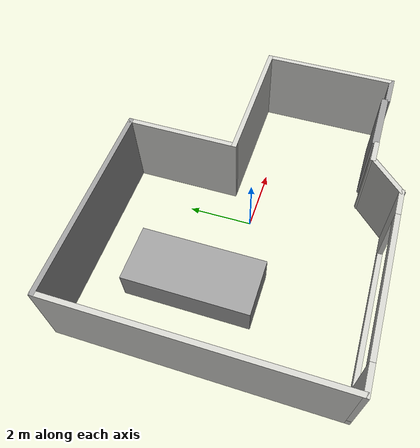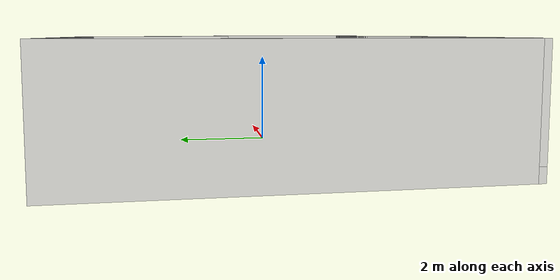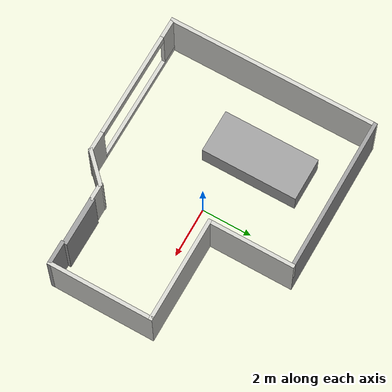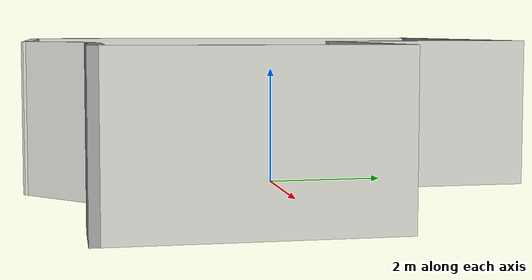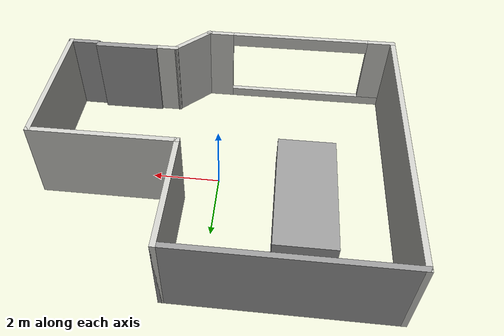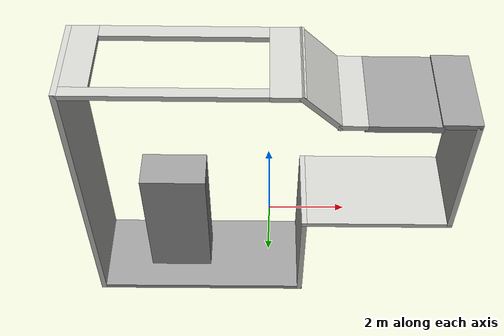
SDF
<?xml version='1.0'?>
<sdf version='1.7'>
  <model name='atproom'>
    <link name='Door_0'>
      <pose>3.26877 -3.17053 0 0 -0 0</pose>
      <self_collide>0</self_collide>
      <enable_wind>0</enable_wind>
      <kinematic>0</kinematic>
      <visual name='Door_0_Visual'>
        <pose>0 0 1.25 0 -0 0</pose>
        <geometry>
          <box>
            <size>1.94 0.2 2.5</size>
          </box>
        </geometry>
        <material>
          <script>
            <uri>file://media/materials/scripts/gazebo.material</uri>
            <name>Gazebo/Grey</name>
          </script>
          <shader type='pixel'/>
        </material>
        <transparency>0</transparency>
        <cast_shadows>1</cast_shadows>
      </visual>
      <collision name='Door_0_Collision'>
        <laser_retro>0</laser_retro>
        <max_contacts>10</max_contacts>
        <pose>0 0 1.25 0 -0 0</pose>
        <geometry>
          <box>
            <size>1.94 0.2 2.5</size>
          </box>
        </geometry>
        <surface>
          <friction>
            <ode>
              <mu>1</mu>
              <mu2>1</mu2>
              <fdir1>0 0 0</fdir1>
              <slip1>0</slip1>
              <slip2>0</slip2>
            </ode>
            <torsional>
              <coefficient>1</coefficient>
              <patch_radius>0</patch_radius>
              <surface_radius>0</surface_radius>
              <use_patch_radius>1</use_patch_radius>
              <ode>
                <slip>0</slip>
              </ode>
            </torsional>
          </friction>
          <bounce>
            <restitution_coefficient>0</restitution_coefficient>
            <threshold>1e+06</threshold>
          </bounce>
          <contact>
            <collide_without_contact>0</collide_without_contact>
            <collide_without_contact_bitmask>1</collide_without_contact_bitmask>
            <collide_bitmask>1</collide_bitmask>
            <ode>
              <soft_cfm>0</soft_cfm>
              <soft_erp>0.2</soft_erp>
              <kp>1e+13</kp>
              <kd>1</kd>
              <max_vel>0.01</max_vel>
              <min_depth>0</min_depth>
            </ode>
            <bullet>
              <split_impulse>1</split_impulse>
              <split_impulse_penetration_threshold>-0.01</split_impulse_penetration_threshold>
              <soft_cfm>0</soft_cfm>
              <soft_erp>0.2</soft_erp>
              <kp>1e+13</kp>
              <kd>1</kd>
            </bullet>
          </contact>
        </surface>
      </collision>
    </link>
    <link name='Wall_0'>
      <pose>2.00459 -3.20487 0 0 -0 3.14159</pose>
      <self_collide>0</self_collide>
      <enable_wind>0</enable_wind>
      <kinematic>0</kinematic>
      <visual name='Wall_0_Visual'>
        <pose>0 0 1.25 0 -0 0</pose>
        <geometry>
          <box>
            <size>0.75 0.15 2.5</size>
          </box>
        </geometry>
        <material>
          <script>
            <uri>file://media/materials/scripts/gazebo.material</uri>
            <name>Gazebo/CeilingTiled</name>
          </script>
          <ambient>1 1 1 1</ambient>
          <shader type='pixel'/>
        </material>
        <meta>
          <layer>0</layer>
        </meta>
        <transparency>0</transparency>
        <cast_shadows>1</cast_shadows>
      </visual>
      <collision name='Wall_0_Collision'>
        <laser_retro>0</laser_retro>
        <max_contacts>10</max_contacts>
        <pose>0 0 1.25 0 -0 0</pose>
        <geometry>
          <box>
            <size>0.75 0.15 2.5</size>
          </box>
        </geometry>
        <surface>
          <friction>
            <ode>
              <mu>1</mu>
              <mu2>1</mu2>
              <fdir1>0 0 0</fdir1>
              <slip1>0</slip1>
              <slip2>0</slip2>
            </ode>
            <torsional>
              <coefficient>1</coefficient>
              <patch_radius>0</patch_radius>
              <surface_radius>0</surface_radius>
              <use_patch_radius>1</use_patch_radius>
              <ode>
                <slip>0</slip>
              </ode>
            </torsional>
          </friction>
          <bounce>
            <restitution_coefficient>0</restitution_coefficient>
            <threshold>1e+06</threshold>
          </bounce>
          <contact>
            <collide_without_contact>0</collide_without_contact>
            <collide_without_contact_bitmask>1</collide_without_contact_bitmask>
            <collide_bitmask>1</collide_bitmask>
            <ode>
              <soft_cfm>0</soft_cfm>
              <soft_erp>0.2</soft_erp>
              <kp>1e+13</kp>
              <kd>1</kd>
              <max_vel>0.01</max_vel>
              <min_depth>0</min_depth>
            </ode>
            <bullet>
              <split_impulse>1</split_impulse>
              <split_impulse_penetration_threshold>-0.01</split_impulse_penetration_threshold>
              <soft_cfm>0</soft_cfm>
              <soft_erp>0.2</soft_erp>
              <kp>1e+13</kp>
              <kd>1</kd>
            </bullet>
          </contact>
        </surface>
      </collision>
    </link>
    <link name='Wall_10'>
      <pose>-2.05 4.19053 0 0 -0 0</pose>
      <self_collide>0</self_collide>
      <enable_wind>0</enable_wind>
      <kinematic>0</kinematic>
      <visual name='Wall_10_Visual'>
        <pose>0 0 1.25 0 -0 0</pose>
        <geometry>
          <box>
            <size>6.25 0.15 2.5</size>
          </box>
        </geometry>
        <material>
          <script>
            <uri>file://media/materials/scripts/gazebo.material</uri>
            <name>Gazebo/Grey</name>
          </script>
          <ambient>1 1 1 1</ambient>
          <shader type='pixel'/>
        </material>
        <meta>
          <layer>0</layer>
        </meta>
        <transparency>0</transparency>
        <cast_shadows>1</cast_shadows>
      </visual>
      <collision name='Wall_10_Collision'>
        <laser_retro>0</laser_retro>
        <max_contacts>10</max_contacts>
        <pose>0 0 1.25 0 -0 0</pose>
        <geometry>
          <box>
            <size>6.25 0.15 2.5</size>
          </box>
        </geometry>
        <surface>
          <friction>
            <ode>
              <mu>1</mu>
              <mu2>1</mu2>
              <fdir1>0 0 0</fdir1>
              <slip1>0</slip1>
              <slip2>0</slip2>
            </ode>
            <torsional>
              <coefficient>1</coefficient>
              <patch_radius>0</patch_radius>
              <surface_radius>0</surface_radius>
              <use_patch_radius>1</use_patch_radius>
              <ode>
                <slip>0</slip>
              </ode>
            </torsional>
          </friction>
          <bounce>
            <restitution_coefficient>0</restitution_coefficient>
            <threshold>1e+06</threshold>
          </bounce>
          <contact>
            <collide_without_contact>0</collide_without_contact>
            <collide_without_contact_bitmask>1</collide_without_contact_bitmask>
            <collide_bitmask>1</collide_bitmask>
            <ode>
              <soft_cfm>0</soft_cfm>
              <soft_erp>0.2</soft_erp>
              <kp>1e+13</kp>
              <kd>1</kd>
              <max_vel>0.01</max_vel>
              <min_depth>0</min_depth>
            </ode>
            <bullet>
              <split_impulse>1</split_impulse>
              <split_impulse_penetration_threshold>-0.01</split_impulse_penetration_threshold>
              <soft_cfm>0</soft_cfm>
              <soft_erp>0.2</soft_erp>
              <kp>1e+13</kp>
              <kd>1</kd>
            </bullet>
          </contact>
        </surface>
      </collision>
    </link>
    <link name='Wall_11'>
      <pose>1 2.51553 0 0 0 -1.5708</pose>
      <self_collide>0</self_collide>
      <enable_wind>0</enable_wind>
      <kinematic>0</kinematic>
      <visual name='Wall_11_Visual'>
        <pose>0 0 1.25 0 -0 0</pose>
        <geometry>
          <box>
            <size>3.5 0.15 2.5</size>
          </box>
        </geometry>
        <material>
          <script>
            <uri>file://media/materials/scripts/gazebo.material</uri>
            <name>Gazebo/CeilingTiled</name>
          </script>
          <ambient>1 1 1 1</ambient>
          <shader type='pixel'/>
        </material>
        <meta>
          <layer>0</layer>
        </meta>
        <transparency>0</transparency>
        <cast_shadows>1</cast_shadows>
      </visual>
      <collision name='Wall_11_Collision'>
        <laser_retro>0</laser_retro>
        <max_contacts>10</max_contacts>
        <pose>0 0 1.25 0 -0 0</pose>
        <geometry>
          <box>
            <size>3.5 0.15 2.5</size>
          </box>
        </geometry>
        <surface>
          <friction>
            <ode>
              <mu>1</mu>
              <mu2>1</mu2>
              <fdir1>0 0 0</fdir1>
              <slip1>0</slip1>
              <slip2>0</slip2>
            </ode>
            <torsional>
              <coefficient>1</coefficient>
              <patch_radius>0</patch_radius>
              <surface_radius>0</surface_radius>
              <use_patch_radius>1</use_patch_radius>
              <ode>
                <slip>0</slip>
              </ode>
            </torsional>
          </friction>
          <bounce>
            <restitution_coefficient>0</restitution_coefficient>
            <threshold>1e+06</threshold>
          </bounce>
          <contact>
            <collide_without_contact>0</collide_without_contact>
            <collide_without_contact_bitmask>1</collide_without_contact_bitmask>
            <collide_bitmask>1</collide_bitmask>
            <ode>
              <soft_cfm>0</soft_cfm>
              <soft_erp>0.2</soft_erp>
              <kp>1e+13</kp>
              <kd>1</kd>
              <max_vel>0.01</max_vel>
              <min_depth>0</min_depth>
            </ode>
            <bullet>
              <split_impulse>1</split_impulse>
              <split_impulse_penetration_threshold>-0.01</split_impulse_penetration_threshold>
              <soft_cfm>0</soft_cfm>
              <soft_erp>0.2</soft_erp>
              <kp>1e+13</kp>
              <kd>1</kd>
            </bullet>
          </contact>
        </surface>
      </collision>
    </link>
    <link name='Wall_12'>
      <pose>3.05 0.840533 0 0 -0 0</pose>
      <self_collide>0</self_collide>
      <enable_wind>0</enable_wind>
      <kinematic>0</kinematic>
      <visual name='Wall_12_Visual'>
        <pose>0 0 1.25 0 -0 0</pose>
        <geometry>
          <box>
            <size>4.25 0.15 2.5</size>
          </box>
        </geometry>
        <material>
          <script>
            <uri>file://media/materials/scripts/gazebo.material</uri>
            <name>Gazebo/CeilingTiled</name>
          </script>
          <ambient>1 1 1 1</ambient>
          <shader type='pixel'/>
        </material>
        <meta>
          <layer>0</layer>
        </meta>
        <transparency>0</transparency>
        <cast_shadows>1</cast_shadows>
      </visual>
      <collision name='Wall_12_Collision'>
        <laser_retro>0</laser_retro>
        <max_contacts>10</max_contacts>
        <pose>0 0 1.25 0 -0 0</pose>
        <geometry>
          <box>
            <size>4.25 0.15 2.5</size>
          </box>
        </geometry>
        <surface>
          <friction>
            <ode>
              <mu>1</mu>
              <mu2>1</mu2>
              <fdir1>0 0 0</fdir1>
              <slip1>0</slip1>
              <slip2>0</slip2>
            </ode>
            <torsional>
              <coefficient>1</coefficient>
              <patch_radius>0</patch_radius>
              <surface_radius>0</surface_radius>
              <use_patch_radius>1</use_patch_radius>
              <ode>
                <slip>0</slip>
              </ode>
            </torsional>
          </friction>
          <bounce>
            <restitution_coefficient>0</restitution_coefficient>
            <threshold>1e+06</threshold>
          </bounce>
          <contact>
            <collide_without_contact>0</collide_without_contact>
            <collide_without_contact_bitmask>1</collide_without_contact_bitmask>
            <collide_bitmask>1</collide_bitmask>
            <ode>
              <soft_cfm>0</soft_cfm>
              <soft_erp>0.2</soft_erp>
              <kp>1e+13</kp>
              <kd>1</kd>
              <max_vel>0.01</max_vel>
              <min_depth>0</min_depth>
            </ode>
            <bullet>
              <split_impulse>1</split_impulse>
              <split_impulse_penetration_threshold>-0.01</split_impulse_penetration_threshold>
              <soft_cfm>0</soft_cfm>
              <soft_erp>0.2</soft_erp>
              <kp>1e+13</kp>
              <kd>1</kd>
            </bullet>
          </contact>
        </surface>
      </collision>
    </link>
    <link name='Wall_13'>
      <pose>5.1 -1.20947 0 0 0 -1.5708</pose>
      <self_collide>0</self_collide>
      <enable_wind>0</enable_wind>
      <kinematic>0</kinematic>
      <visual name='Wall_13_Visual'>
        <pose>0 0 1.25 0 -0 0</pose>
        <geometry>
          <box>
            <size>4.25 0.15 2.5</size>
          </box>
        </geometry>
        <material>
          <script>
            <uri>file://media/materials/scripts/gazebo.material</uri>
            <name>Gazebo/CeilingTiled</name>
          </script>
          <ambient>1 1 1 1</ambient>
          <shader type='pixel'/>
        </material>
        <meta>
          <layer>0</layer>
        </meta>
        <transparency>0</transparency>
        <cast_shadows>1</cast_shadows>
      </visual>
      <collision name='Wall_13_Collision'>
        <laser_retro>0</laser_retro>
        <max_contacts>10</max_contacts>
        <pose>0 0 1.25 0 -0 0</pose>
        <geometry>
          <box>
            <size>4.25 0.15 2.5</size>
          </box>
        </geometry>
        <surface>
          <friction>
            <ode>
              <mu>1</mu>
              <mu2>1</mu2>
              <fdir1>0 0 0</fdir1>
              <slip1>0</slip1>
              <slip2>0</slip2>
            </ode>
            <torsional>
              <coefficient>1</coefficient>
              <patch_radius>0</patch_radius>
              <surface_radius>0</surface_radius>
              <use_patch_radius>1</use_patch_radius>
              <ode>
                <slip>0</slip>
              </ode>
            </torsional>
          </friction>
          <bounce>
            <restitution_coefficient>0</restitution_coefficient>
            <threshold>1e+06</threshold>
          </bounce>
          <contact>
            <collide_without_contact>0</collide_without_contact>
            <collide_without_contact_bitmask>1</collide_without_contact_bitmask>
            <collide_bitmask>1</collide_bitmask>
            <ode>
              <soft_cfm>0</soft_cfm>
              <soft_erp>0.2</soft_erp>
              <kp>1e+13</kp>
              <kd>1</kd>
              <max_vel>0.01</max_vel>
              <min_depth>0</min_depth>
            </ode>
            <bullet>
              <split_impulse>1</split_impulse>
              <split_impulse_penetration_threshold>-0.01</split_impulse_penetration_threshold>
              <soft_cfm>0</soft_cfm>
              <soft_erp>0.2</soft_erp>
              <kp>1e+13</kp>
              <kd>1</kd>
            </bullet>
          </contact>
        </surface>
      </collision>
    </link>
    <link name='Wall_14'>
      <pose>4.675 -3.25947 0 0 -0 3.14159</pose>
      <self_collide>0</self_collide>
      <enable_wind>0</enable_wind>
      <kinematic>0</kinematic>
      <visual name='Wall_14_Visual'>
        <pose>0 0 1.25 0 -0 0</pose>
        <geometry>
          <box>
            <size>1 0.15 2.5</size>
          </box>
        </geometry>
        <material>
          <script>
            <uri>file://media/materials/scripts/gazebo.material</uri>
            <name>Gazebo/Grey</name>
          </script>
          <ambient>1 1 1 1</ambient>
          <shader type='pixel'/>
        </material>
        <meta>
          <layer>0</layer>
        </meta>
        <transparency>0</transparency>
        <cast_shadows>1</cast_shadows>
      </visual>
      <collision name='Wall_14_Collision'>
        <laser_retro>0</laser_retro>
        <max_contacts>10</max_contacts>
        <pose>0 0 1.25 0 -0 0</pose>
        <geometry>
          <box>
            <size>1 0.15 2.5</size>
          </box>
        </geometry>
        <surface>
          <friction>
            <ode>
              <mu>1</mu>
              <mu2>1</mu2>
              <fdir1>0 0 0</fdir1>
              <slip1>0</slip1>
              <slip2>0</slip2>
            </ode>
            <torsional>
              <coefficient>1</coefficient>
              <patch_radius>0</patch_radius>
              <surface_radius>0</surface_radius>
              <use_patch_radius>1</use_patch_radius>
              <ode>
                <slip>0</slip>
              </ode>
            </torsional>
          </friction>
          <bounce>
            <restitution_coefficient>0</restitution_coefficient>
            <threshold>1e+06</threshold>
          </bounce>
          <contact>
            <collide_without_contact>0</collide_without_contact>
            <collide_without_contact_bitmask>1</collide_without_contact_bitmask>
            <collide_bitmask>1</collide_bitmask>
            <ode>
              <soft_cfm>0</soft_cfm>
              <soft_erp>0.2</soft_erp>
              <kp>1e+13</kp>
              <kd>1</kd>
              <max_vel>0.01</max_vel>
              <min_depth>0</min_depth>
            </ode>
            <bullet>
              <split_impulse>1</split_impulse>
              <split_impulse_penetration_threshold>-0.01</split_impulse_penetration_threshold>
              <soft_cfm>0</soft_cfm>
              <soft_erp>0.2</soft_erp>
              <kp>1e+13</kp>
              <kd>1</kd>
            </bullet>
          </contact>
        </surface>
      </collision>
    </link>
    <link name='Wall_6'>
      <pose>1.2273 -3.68217 0 0 0 -2.35619</pose>
      <self_collide>0</self_collide>
      <enable_wind>0</enable_wind>
      <kinematic>0</kinematic>
      <visual name='Wall_6_Visual'>
        <pose>0 0 1.25 0 -0 0</pose>
        <geometry>
          <box>
            <size>1.5 0.15 2.5</size>
          </box>
        </geometry>
        <material>
          <script>
            <uri>file://media/materials/scripts/gazebo.material</uri>
            <name>Gazebo/CeilingTiled</name>
          </script>
          <ambient>1 1 1 1</ambient>
          <shader type='pixel'/>
        </material>
        <meta>
          <layer>0</layer>
        </meta>
        <transparency>0</transparency>
        <cast_shadows>1</cast_shadows>
      </visual>
      <collision name='Wall_6_Collision'>
        <laser_retro>0</laser_retro>
        <max_contacts>10</max_contacts>
        <pose>0 0 1.25 0 -0 0</pose>
        <geometry>
          <box>
            <size>1.5 0.15 2.5</size>
          </box>
        </geometry>
        <surface>
          <friction>
            <ode>
              <mu>1</mu>
              <mu2>1</mu2>
              <fdir1>0 0 0</fdir1>
              <slip1>0</slip1>
              <slip2>0</slip2>
            </ode>
            <torsional>
              <coefficient>1</coefficient>
              <patch_radius>0</patch_radius>
              <surface_radius>0</surface_radius>
              <use_patch_radius>1</use_patch_radius>
              <ode>
                <slip>0</slip>
              </ode>
            </torsional>
          </friction>
          <bounce>
            <restitution_coefficient>0</restitution_coefficient>
            <threshold>1e+06</threshold>
          </bounce>
          <contact>
            <collide_without_contact>0</collide_without_contact>
            <collide_without_contact_bitmask>1</collide_without_contact_bitmask>
            <collide_bitmask>1</collide_bitmask>
            <ode>
              <soft_cfm>0</soft_cfm>
              <soft_erp>0.2</soft_erp>
              <kp>1e+13</kp>
              <kd>1</kd>
              <max_vel>0.01</max_vel>
              <min_depth>0</min_depth>
            </ode>
            <bullet>
              <split_impulse>1</split_impulse>
              <split_impulse_penetration_threshold>-0.01</split_impulse_penetration_threshold>
              <soft_cfm>0</soft_cfm>
              <soft_erp>0.2</soft_erp>
              <kp>1e+13</kp>
              <kd>1</kd>
            </bullet>
          </contact>
        </surface>
      </collision>
    </link>
    <link name='Wall_8'>
      <pose>-2.175 -4.15947 0 0 -0 3.14159</pose>
      <self_collide>0</self_collide>
      <enable_wind>0</enable_wind>
      <kinematic>0</kinematic>
      <visual name='Wall_8_Visual_0'>
        <pose>-2.56742 0 1.25 0 -0 0</pose>
        <geometry>
          <box>
            <size>0.865163 0.15 2.5</size>
          </box>
        </geometry>
        <material>
          <script>
            <uri>file://media/materials/scripts/gazebo.material</uri>
            <name>Gazebo/CeilingTiled</name>
          </script>
          <ambient>1 1 1 1</ambient>
          <shader type='pixel'/>
        </material>
        <meta>
          <layer>0</layer>
        </meta>
        <transparency>0</transparency>
        <cast_shadows>1</cast_shadows>
      </visual>
      <visual name='Wall_8_Visual_3'>
        <pose>0.005163 0 2.3 0 -0 0</pose>
        <geometry>
          <box>
            <size>4.28 0.15 0.4</size>
          </box>
        </geometry>
        <material>
          <script>
            <uri>file://media/materials/scripts/gazebo.material</uri>
            <name>Gazebo/CeilingTiled</name>
          </script>
          <ambient>1 1 1 1</ambient>
          <shader type='pixel'/>
        </material>
        <meta>
          <layer>0</layer>
        </meta>
        <transparency>0</transparency>
        <cast_shadows>1</cast_shadows>
      </visual>
      <visual name='Wall_8_Visual_2'>
        <pose>2.57258 0 1.4 0 -0 0</pose>
        <geometry>
          <box>
            <size>0.854837 0.15 2.2</size>
          </box>
        </geometry>
        <material>
          <script>
            <uri>file://media/materials/scripts/gazebo.material</uri>
            <name>Gazebo/CeilingTiled</name>
          </script>
          <ambient>1 1 1 1</ambient>
          <shader type='pixel'/>
        </material>
        <meta>
          <layer>0</layer>
        </meta>
        <transparency>0</transparency>
        <cast_shadows>1</cast_shadows>
      </visual>
      <visual name='Wall_8_Visual_1'>
        <pose>0.432581 0 0.15 0 -0 0</pose>
        <geometry>
          <box>
            <size>5.13484 0.15 0.3</size>
          </box>
        </geometry>
        <material>
          <script>
            <uri>file://media/materials/scripts/gazebo.material</uri>
            <name>Gazebo/CeilingTiled</name>
          </script>
          <ambient>1 1 1 1</ambient>
          <shader type='pixel'/>
        </material>
        <meta>
          <layer>0</layer>
        </meta>
        <transparency>0</transparency>
        <cast_shadows>1</cast_shadows>
      </visual>
      <collision name='Wall_8_Collision_1'>
        <laser_retro>0</laser_retro>
        <max_contacts>10</max_contacts>
        <pose>0.432581 0 0.15 0 -0 0</pose>
        <geometry>
          <box>
            <size>5.13484 0.15 0.3</size>
          </box>
        </geometry>
        <surface>
          <friction>
            <ode>
              <mu>1</mu>
              <mu2>1</mu2>
              <fdir1>0 0 0</fdir1>
              <slip1>0</slip1>
              <slip2>0</slip2>
            </ode>
            <torsional>
              <coefficient>1</coefficient>
              <patch_radius>0</patch_radius>
              <surface_radius>0</surface_radius>
              <use_patch_radius>1</use_patch_radius>
              <ode>
                <slip>0</slip>
              </ode>
            </torsional>
          </friction>
          <bounce>
            <restitution_coefficient>0</restitution_coefficient>
            <threshold>1e+06</threshold>
          </bounce>
          <contact>
            <collide_without_contact>0</collide_without_contact>
            <collide_without_contact_bitmask>1</collide_without_contact_bitmask>
            <collide_bitmask>1</collide_bitmask>
            <ode>
              <soft_cfm>0</soft_cfm>
              <soft_erp>0.2</soft_erp>
              <kp>1e+13</kp>
              <kd>1</kd>
              <max_vel>0.01</max_vel>
              <min_depth>0</min_depth>
            </ode>
            <bullet>
              <split_impulse>1</split_impulse>
              <split_impulse_penetration_threshold>-0.01</split_impulse_penetration_threshold>
              <soft_cfm>0</soft_cfm>
              <soft_erp>0.2</soft_erp>
              <kp>1e+13</kp>
              <kd>1</kd>
            </bullet>
          </contact>
        </surface>
      </collision>
      <collision name='Wall_8_Collision_0'>
        <laser_retro>0</laser_retro>
        <max_contacts>10</max_contacts>
        <pose>-2.56742 0 1.25 0 -0 0</pose>
        <geometry>
          <box>
            <size>0.865163 0.15 2.5</size>
          </box>
        </geometry>
        <surface>
          <friction>
            <ode>
              <mu>1</mu>
              <mu2>1</mu2>
              <fdir1>0 0 0</fdir1>
              <slip1>0</slip1>
              <slip2>0</slip2>
            </ode>
            <torsional>
              <coefficient>1</coefficient>
              <patch_radius>0</patch_radius>
              <surface_radius>0</surface_radius>
              <use_patch_radius>1</use_patch_radius>
              <ode>
                <slip>0</slip>
              </ode>
            </torsional>
          </friction>
          <bounce>
            <restitution_coefficient>0</restitution_coefficient>
            <threshold>1e+06</threshold>
          </bounce>
          <contact>
            <collide_without_contact>0</collide_without_contact>
            <collide_without_contact_bitmask>1</collide_without_contact_bitmask>
            <collide_bitmask>1</collide_bitmask>
            <ode>
              <soft_cfm>0</soft_cfm>
              <soft_erp>0.2</soft_erp>
              <kp>1e+13</kp>
              <kd>1</kd>
              <max_vel>0.01</max_vel>
              <min_depth>0</min_depth>
            </ode>
            <bullet>
              <split_impulse>1</split_impulse>
              <split_impulse_penetration_threshold>-0.01</split_impulse_penetration_threshold>
              <soft_cfm>0</soft_cfm>
              <soft_erp>0.2</soft_erp>
              <kp>1e+13</kp>
              <kd>1</kd>
            </bullet>
          </contact>
        </surface>
      </collision>
      <collision name='Wall_8_Collision_3'>
        <laser_retro>0</laser_retro>
        <max_contacts>10</max_contacts>
        <pose>0.005163 0 2.3 0 -0 0</pose>
        <geometry>
          <box>
            <size>4.28 0.15 0.4</size>
          </box>
        </geometry>
        <surface>
          <friction>
            <ode>
              <mu>1</mu>
              <mu2>1</mu2>
              <fdir1>0 0 0</fdir1>
              <slip1>0</slip1>
              <slip2>0</slip2>
            </ode>
            <torsional>
              <coefficient>1</coefficient>
              <patch_radius>0</patch_radius>
              <surface_radius>0</surface_radius>
              <use_patch_radius>1</use_patch_radius>
              <ode>
                <slip>0</slip>
              </ode>
            </torsional>
          </friction>
          <bounce>
            <restitution_coefficient>0</restitution_coefficient>
            <threshold>1e+06</threshold>
          </bounce>
          <contact>
            <collide_without_contact>0</collide_without_contact>
            <collide_without_contact_bitmask>1</collide_without_contact_bitmask>
            <collide_bitmask>1</collide_bitmask>
            <ode>
              <soft_cfm>0</soft_cfm>
              <soft_erp>0.2</soft_erp>
              <kp>1e+13</kp>
              <kd>1</kd>
              <max_vel>0.01</max_vel>
              <min_depth>0</min_depth>
            </ode>
            <bullet>
              <split_impulse>1</split_impulse>
              <split_impulse_penetration_threshold>-0.01</split_impulse_penetration_threshold>
              <soft_cfm>0</soft_cfm>
              <soft_erp>0.2</soft_erp>
              <kp>1e+13</kp>
              <kd>1</kd>
            </bullet>
          </contact>
        </surface>
      </collision>
      <collision name='Wall_8_Collision_2'>
        <laser_retro>0</laser_retro>
        <max_contacts>10</max_contacts>
        <pose>2.57258 0 1.4 0 -0 0</pose>
        <geometry>
          <box>
            <size>0.854837 0.15 2.2</size>
          </box>
        </geometry>
        <surface>
          <friction>
            <ode>
              <mu>1</mu>
              <mu2>1</mu2>
              <fdir1>0 0 0</fdir1>
              <slip1>0</slip1>
              <slip2>0</slip2>
            </ode>
            <torsional>
              <coefficient>1</coefficient>
              <patch_radius>0</patch_radius>
              <surface_radius>0</surface_radius>
              <use_patch_radius>1</use_patch_radius>
              <ode>
                <slip>0</slip>
              </ode>
            </torsional>
          </friction>
          <bounce>
            <restitution_coefficient>0</restitution_coefficient>
            <threshold>1e+06</threshold>
          </bounce>
          <contact>
            <collide_without_contact>0</collide_without_contact>
            <collide_without_contact_bitmask>1</collide_without_contact_bitmask>
            <collide_bitmask>1</collide_bitmask>
            <ode>
              <soft_cfm>0</soft_cfm>
              <soft_erp>0.2</soft_erp>
              <kp>1e+13</kp>
              <kd>1</kd>
              <max_vel>0.01</max_vel>
              <min_depth>0</min_depth>
            </ode>
            <bullet>
              <split_impulse>1</split_impulse>
              <split_impulse_penetration_threshold>-0.01</split_impulse_penetration_threshold>
              <soft_cfm>0</soft_cfm>
              <soft_erp>0.2</soft_erp>
              <kp>1e+13</kp>
              <kd>1</kd>
            </bullet>
          </contact>
        </surface>
      </collision>
    </link>
    <link name='Wall_9'>
      <pose>-5.1 0.015533 0 0 -0 1.5708</pose>
      <self_collide>0</self_collide>
      <enable_wind>0</enable_wind>
      <kinematic>0</kinematic>
      <visual name='Wall_9_Visual'>
        <pose>0 0 1.25 0 -0 0</pose>
        <geometry>
          <box>
            <size>8.5 0.15 2.5</size>
          </box>
        </geometry>
        <material>
          <script>
            <uri>file://media/materials/scripts/gazebo.material</uri>
            <name>Gazebo/CeilingTiled</name>
          </script>
          <ambient>1 1 1 1</ambient>
          <shader type='pixel'/>
        </material>
        <meta>
          <layer>0</layer>
        </meta>
        <transparency>0</transparency>
        <cast_shadows>1</cast_shadows>
      </visual>
      <collision name='Wall_9_Collision'>
        <laser_retro>0</laser_retro>
        <max_contacts>10</max_contacts>
        <pose>0 0 1.25 0 -0 0</pose>
        <geometry>
          <box>
            <size>8.5 0.15 2.5</size>
          </box>
        </geometry>
        <surface>
          <friction>
            <ode>
              <mu>1</mu>
              <mu2>1</mu2>
              <fdir1>0 0 0</fdir1>
              <slip1>0</slip1>
              <slip2>0</slip2>
            </ode>
            <torsional>
              <coefficient>1</coefficient>
              <patch_radius>0</patch_radius>
              <surface_radius>0</surface_radius>
              <use_patch_radius>1</use_patch_radius>
              <ode>
                <slip>0</slip>
              </ode>
            </torsional>
          </friction>
          <bounce>
            <restitution_coefficient>0</restitution_coefficient>
            <threshold>1e+06</threshold>
          </bounce>
          <contact>
            <collide_without_contact>0</collide_without_contact>
            <collide_without_contact_bitmask>1</collide_without_contact_bitmask>
            <collide_bitmask>1</collide_bitmask>
            <ode>
              <soft_cfm>0</soft_cfm>
              <soft_erp>0.2</soft_erp>
              <kp>1e+13</kp>
              <kd>1</kd>
              <max_vel>0.01</max_vel>
              <min_depth>0</min_depth>
            </ode>
            <bullet>
              <split_impulse>1</split_impulse>
              <split_impulse_penetration_threshold>-0.01</split_impulse_penetration_threshold>
              <soft_cfm>0</soft_cfm>
              <soft_erp>0.2</soft_erp>
              <kp>1e+13</kp>
              <kd>1</kd>
            </bullet>
          </contact>
        </surface>
      </collision>
    </link>
    <link name='link_2'>
      <inertial>
        <mass>6.74879</mass>
        <inertia>
          <ixx>8.99529</ixx>
          <ixy>0</ixy>
          <ixz>0</ixz>
          <iyy>2.27072</iyy>
          <iyz>0</iyz>
          <izz>10.1412</izz>
        </inertia>
        <pose>0 0 0 0 -0 0</pose>
      </inertial>
      <pose>-2.57685 0.933833 0.5 0 -0 0</pose>
      <visual name='visual'>
        <pose>0 0 0 0 -0 0</pose>
        <geometry>
          <box>
            <size>1.74286 3.87227 1</size>
          </box>
        </geometry>
        <material>
          <lighting>1</lighting>
          <script>
            <uri>file://media/materials/scripts/gazebo.material</uri>
            <name>Gazebo/Grey</name>
          </script>
          <shader type='pixel'/>
        </material>
        <transparency>0</transparency>
        <cast_shadows>1</cast_shadows>
      </visual>
      <collision name='collision'>
        <laser_retro>0</laser_retro>
        <max_contacts>10</max_contacts>
        <pose>0 0 0 0 -0 0</pose>
        <geometry>
          <box>
            <size>1.74286 3.87227 1</size>
          </box>
        </geometry>
        <surface>
          <friction>
            <ode>
              <mu>1</mu>
              <mu2>1</mu2>
              <fdir1>0 0 0</fdir1>
              <slip1>0</slip1>
              <slip2>0</slip2>
            </ode>
            <torsional>
              <coefficient>1</coefficient>
              <patch_radius>0</patch_radius>
              <surface_radius>0</surface_radius>
              <use_patch_radius>1</use_patch_radius>
              <ode>
                <slip>0</slip>
              </ode>
            </torsional>
          </friction>
          <bounce>
            <restitution_coefficient>0</restitution_coefficient>
            <threshold>1e+06</threshold>
          </bounce>
          <contact>
            <collide_without_contact>0</collide_without_contact>
            <collide_without_contact_bitmask>1</collide_without_contact_bitmask>
            <collide_bitmask>1</collide_bitmask>
            <ode>
              <soft_cfm>0</soft_cfm>
              <soft_erp>0.2</soft_erp>
              <kp>1e+13</kp>
              <kd>1</kd>
              <max_vel>0.01</max_vel>
              <min_depth>0</min_depth>
            </ode>
            <bullet>
              <split_impulse>1</split_impulse>
              <split_impulse_penetration_threshold>-0.01</split_impulse_penetration_threshold>
              <soft_cfm>0</soft_cfm>
              <soft_erp>0.2</soft_erp>
              <kp>1e+13</kp>
              <kd>1</kd>
            </bullet>
          </contact>
        </surface>
      </collision>
    </link>
    <static>1</static>
    <allow_auto_disable>1</allow_auto_disable>
  </model>
</sdf>
